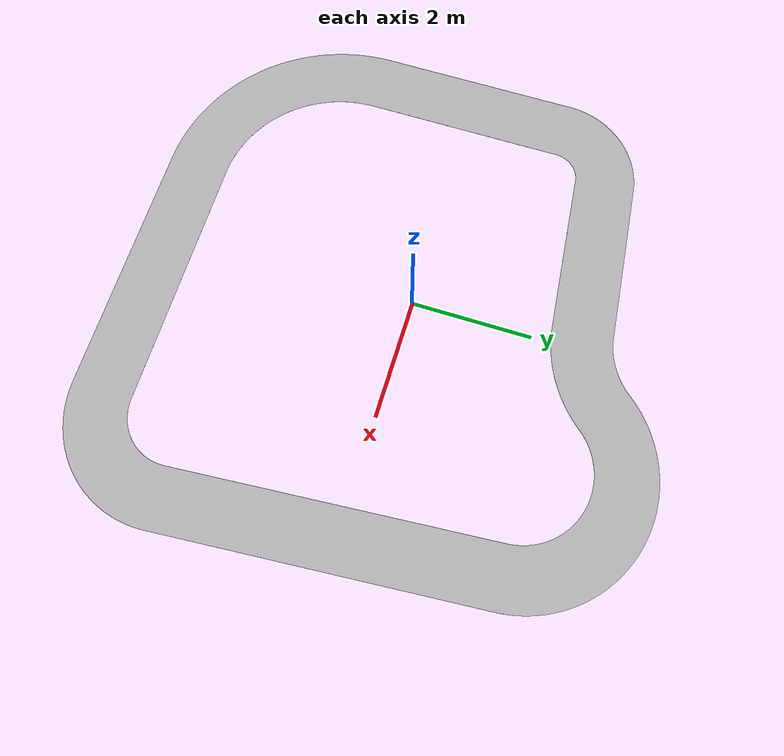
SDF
<?xml version="1.0" ?>
<sdf version="1.5">
  <model name="black_course">
    <static>true</static>
    <link name="link">
      <pose>0 0 0 0 0 0</pose>
      <collision name="collision">
        <geometry>
            <mesh>
              <uri>
                model://black_course/mesh/black_course.stl
              </uri>
              <scale>
                1 1 1
              </scale>
            </mesh>
        </geometry>
        <surface>
            <contact>
              <collide_bitmask>65535</collide_bitmask>
              <ode/>
            </contact>
            <friction>
              <ode>
                <mu>100</mu>
                <mu2>50</mu2>
              </ode>
              <torsional>
                <ode/>
              </torsional>
            </friction>
            <bounce/>
          </surface>
      <max_contacts>10</max_contacts>
      </collision>
      <visual name="visual">
        <cast_shadows>false</cast_shadows>
        <geometry>
            <mesh>
              <uri>
                model://black_course/mesh/black_course.stl
              </uri>
              <scale>
                1 1 1
              </scale>
            </mesh>
        </geometry>
      </visual>
    </link>
  </model>
</sdf>
